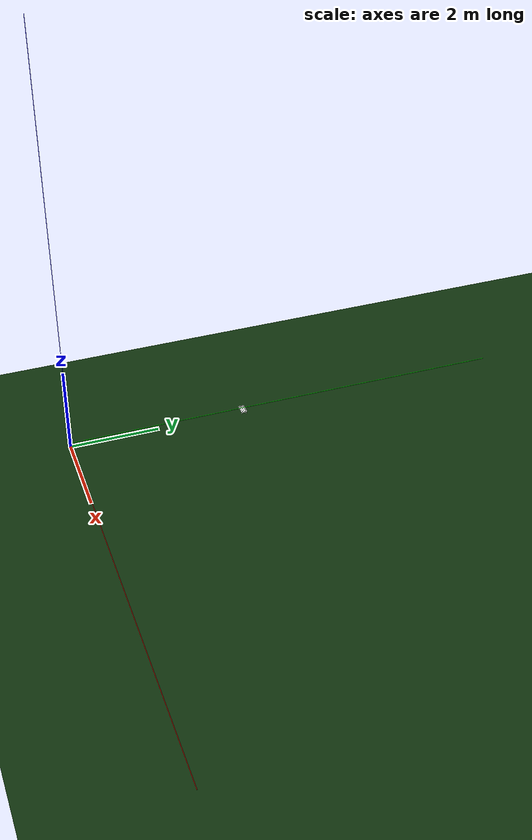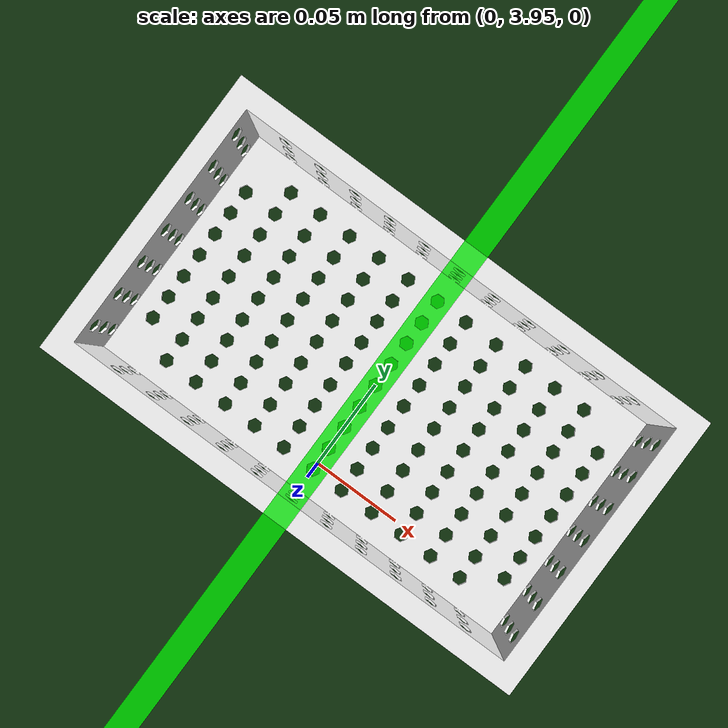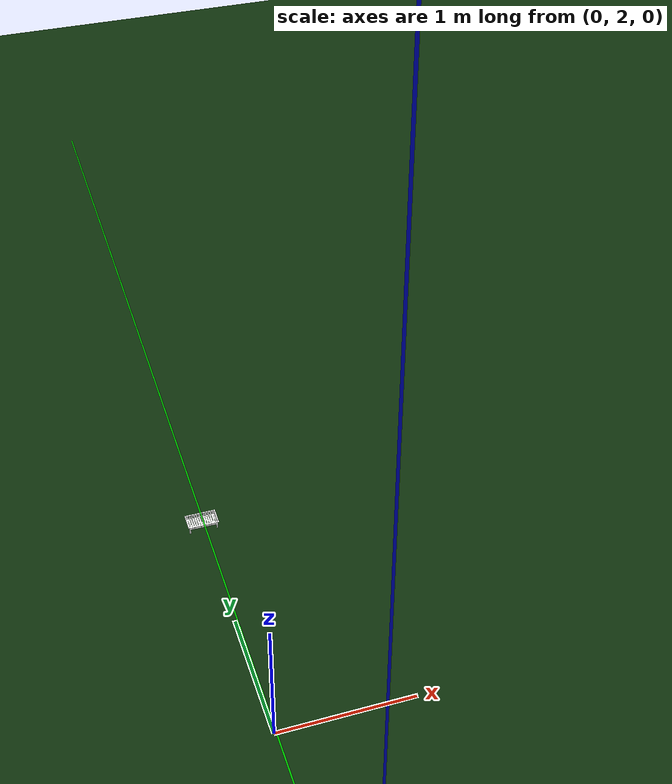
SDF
<sdf version="1.9">
 <world name="ensamb_iris_runway">
  <physics name="1ms" type="ignore">
   <max_step_size>0.001</max_step_size>
   <real_time_factor>1.0</real_time_factor>
  </physics>
  <plugin filename="gz-sim-physics-system" name="gz::sim::systems::Physics"/>
  <plugin filename="gz-sim-sensors-system" name="gz::sim::systems::Sensors">
   <render_engine>ogre2</render_engine>
  </plugin>
  <plugin filename="gz-sim-user-commands-system" name="gz::sim::systems::UserCommands"/>
  <plugin filename="gz-sim-scene-broadcaster-system" name="gz::sim::systems::SceneBroadcaster"/>
  <plugin filename="gz-sim-imu-system" name="gz::sim::systems::Imu"/>
  <plugin filename="gz-sim-navsat-system" name="gz::sim::systems::NavSat"/>
  <scene><ambient>1.0 1.0 1.0</ambient><background>0.8 0.8 0.8</background></scene>
  <policies><include_gui_default_plugins>true</include_gui_default_plugins></policies>
  <spherical_coordinates>
   <latitude_deg>-35.363262</latitude_deg>
   <longitude_deg>149.165237</longitude_deg>
   <elevation>584</elevation>
   <heading_deg>0</heading_deg>
   <surface_model>EARTH_WGS84</surface_model>
  </spherical_coordinates>
  <light type="directional" name="sun">
   <pose>0 0 10 0 0 0</pose>
   <diffuse>0.8 0.8 0.8 1</diffuse>
   <specular>0.8 0.8 0.8 1</specular>
   <attenuation>
    <range>1000</range>
    <constant>0.9</constant>
    <linear>0.01</linear>
    <quadratic>0.001</quadratic>
   </attenuation>
   <direction>-0.5 0.1 -0.9</direction>
  </light>
  <model name="axes">
   <static>1</static>
   <link name="link">
    <visual name="r">
     <cast_shadows>0</cast_shadows>
     <pose>5 0 0.1 0 0 0</pose>
     <geometry><box><size>10 0.01 0.01</size></box></geometry>
     <material>
      <ambient>1 0 0 0.8</ambient>
      <diffuse>1 0 0 0.8</diffuse>
      <emissive>1 0 0 0.8</emissive>
      <specular>0.5 0.5 0.5 0.8</specular>
     </material>
    </visual>
    <visual name="g">
     <cast_shadows>0</cast_shadows>
     <pose>0 5 0.1 0 0 0</pose>
     <geometry><box><size>0.01 10 0.01</size></box></geometry>
     <material>
      <ambient>0 1 0 0.8</ambient>
      <diffuse>0 1 0 0.8</diffuse>
      <emissive>0 1 0 0.8</emissive>
      <specular>0.5 0.5 0.5 0.8</specular>
     </material>
    </visual>
    <visual name="b">
     <cast_shadows>0</cast_shadows>
     <pose>0 0 5.1 0 0 0</pose>
     <geometry><box><size>0.01 0.01 10</size></box></geometry>
     <material>
      <ambient>0 0 1 0.8</ambient>
      <diffuse>0 0 1 0.8</diffuse>
      <emissive>0 0 1 0.8</emissive>
      <specular>0.5 0.5 0.5 0.8</specular>
     </material>
    </visual>
    <sensor name="navsat_sensor" type="navsat"><always_on>1</always_on><update_rate>1</update_rate></sensor>
   </link>
  </model>
  <model name="grass_ground">
   <static>true</static>
   <link name="ground_link">
    <collision name="ground_collision">
     <geometry><plane><normal>0 0 1</normal><size>1500 1500</size></plane></geometry>
    </collision>
    <visual name="grass_visual">
     <cast_shadows>false</cast_shadows>
     <geometry><plane><normal>0 0 1</normal><size>1500 1500</size></plane></geometry>
     <material>
      <ambient>0.04 0.14 0.03 1</ambient>
      <diffuse>0.06 0.20 0.05 1</diffuse>
      <specular>0 0 0 1</specular>
      <emissive>0 0 0 1</emissive>
     </material>
    </visual>
   </link>
  </model>
  <include><uri>model://target_basket</uri><pose>0 4 0 0 0 0</pose></include>
 </world>
</sdf>

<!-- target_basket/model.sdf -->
<sdf version="1.9">
  <model name="target_basket">
    <static>true</static>
    <link name="basket_link">
      <pose>0 0 0 0 0 0</pose>

      <collision name="basket_collision">
        <pose>0 0 0.035 0 0 0</pose>
        <geometry>
          <box>
            <size>0.238 0.138 0.070</size>
          </box>
        </geometry>
      </collision>

      <visual name="basket_visual">
        <pose>-0.110 -0.060 0 0 0 0</pose>
        <geometry>
          <mesh>
            <uri>model://target_basket/meshes/basket.stl</uri>
            <scale>0.001 0.001 0.001</scale>
          </mesh>
        </geometry>
        <material>
          <ambient>1 1 1 1</ambient>
          <diffuse>1 1 1 1</diffuse>
          <specular>0.3 0.3 0.3 1</specular>
        </material>
      </visual>
    </link>
  </model>
</sdf>
